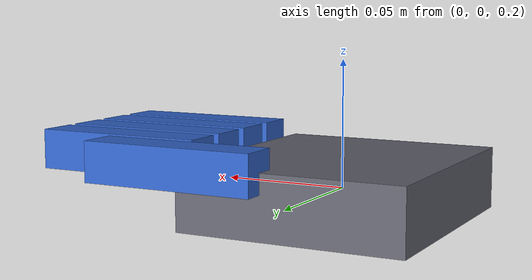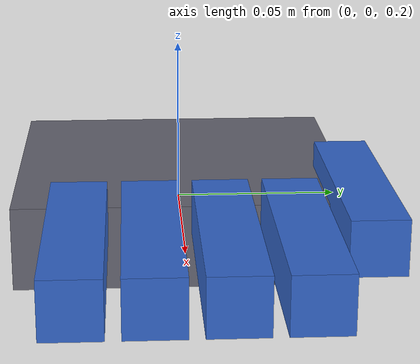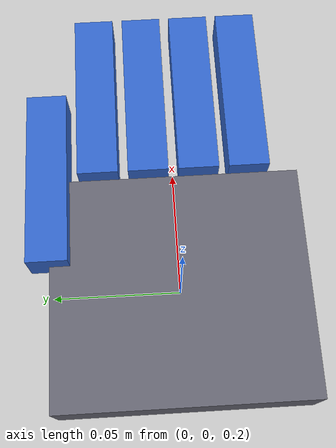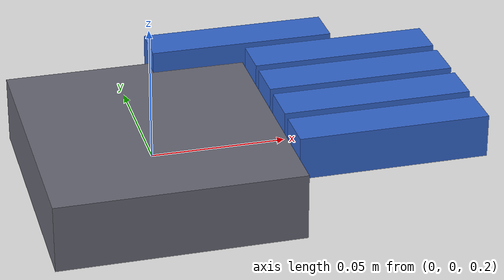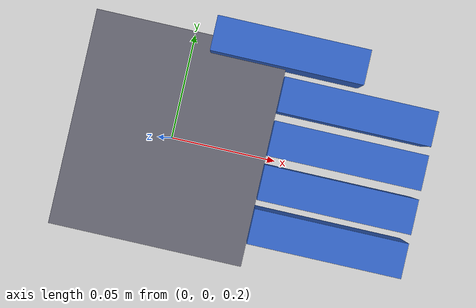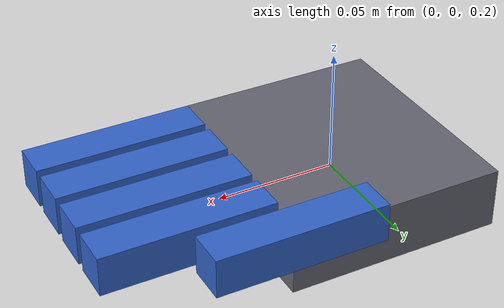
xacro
<?xml version="1.0"?>
<robot name="bci_hand" xmlns:xacro="http://www.ros.org/wiki/xacro">

  <xacro:arg name="controllers_config" default=""/>

  <!-- Finger flexion limits (radians) -->
  <xacro:property name="flex_min" value="0.0"/>
  <xacro:property name="flex_max" value="1.4"/>

  <material name="hand_grey">
    <color rgba="0.4 0.4 0.45 1.0"/>
  </material>
  <material name="finger_blue">
    <color rgba="0.2 0.4 0.8 1.0"/>
  </material>

  <!-- Reusable inertial for a small box link -->
  <xacro:macro name="box_inertial" params="mass x y z">
    <inertial>
      <mass value="${mass}"/>
      <inertia
        ixx="${(mass/12.0)*(y*y+z*z)}" ixy="0.0" ixz="0.0"
        iyy="${(mass/12.0)*(x*x+z*z)}" iyz="0.0"
        izz="${(mass/12.0)*(x*x+y*y)}"/>
    </inertial>
  </xacro:macro>

  <!-- One finger: link + revolute joint attached to the palm -->
  <xacro:macro name="finger" params="name px py">
    <link name="${name}_link">
      <visual>
        <origin xyz="0.035 0 0" rpy="0 0 0"/>
        <geometry><box size="0.070 0.016 0.016"/></geometry>
        <material name="finger_blue"/>
      </visual>
      <collision>
        <origin xyz="0.035 0 0" rpy="0 0 0"/>
        <geometry><box size="0.070 0.016 0.016"/></geometry>
      </collision>
      <xacro:box_inertial mass="0.02" x="0.070" y="0.016" z="0.016"/>
    </link>

    <joint name="${name}_joint" type="revolute">
      <parent link="palm"/>
      <child link="${name}_link"/>
      <origin xyz="${px} ${py} 0.0125" rpy="0 0 0"/>
      <axis xyz="0 1 0"/>
      <limit lower="${flex_min}" upper="${flex_max}" effort="10.0" velocity="2.0"/>
      <dynamics damping="0.1" friction="0.05"/>
    </joint>
  </xacro:macro>

  <!-- World anchor so the hand does not fall in simulation -->
  <link name="world"/>

  <link name="palm">
    <visual>
      <geometry><box size="0.090 0.100 0.025"/></geometry>
      <material name="hand_grey"/>
    </visual>
    <collision>
      <geometry><box size="0.090 0.100 0.025"/></geometry>
    </collision>
    <xacro:box_inertial mass="0.30" x="0.090" y="0.100" z="0.025"/>
  </link>

  <joint name="world_to_palm" type="fixed">
    <parent link="world"/>
    <child link="palm"/>
    <origin xyz="0 0 0.20" rpy="0 0 0"/>
  </joint>

  <!-- Four fingers along the front edge + an offset thumb -->
  <xacro:finger name="index"  px="0.045" py="0.030"/>
  <xacro:finger name="middle" px="0.045" py="0.010"/>
  <xacro:finger name="ring"   px="0.045" py="-0.010"/>
  <xacro:finger name="little" px="0.045" py="-0.030"/>
  <xacro:finger name="thumb"  px="0.010" py="0.050"/>

  <!-- ros2_control hardware description (Gazebo system) -->
  <ros2_control name="BCIHandSystem" type="system">
    <hardware>
      <plugin>gz_ros2_control/GazeboSimSystem</plugin>
    </hardware>
    <xacro:macro name="joint_ctrl" params="name">
      <joint name="${name}">
        <command_interface name="position">
          <param name="min">${flex_min}</param>
          <param name="max">${flex_max}</param>
        </command_interface>
        <state_interface name="position"/>
        <state_interface name="velocity"/>
      </joint>
    </xacro:macro>
    <xacro:joint_ctrl name="thumb_joint"/>
    <xacro:joint_ctrl name="index_joint"/>
    <xacro:joint_ctrl name="middle_joint"/>
    <xacro:joint_ctrl name="ring_joint"/>
    <xacro:joint_ctrl name="little_joint"/>
  </ros2_control>

  <!-- Gazebo ros2_control plugin: loads the controller manager in-sim -->
  <gazebo>
    <plugin filename="gz_ros2_control-system"
            name="gz_ros2_control::GazeboSimROS2ControlPlugin">
      <parameters>$(arg controllers_config)</parameters>
    </plugin>
  </gazebo>

</robot>
